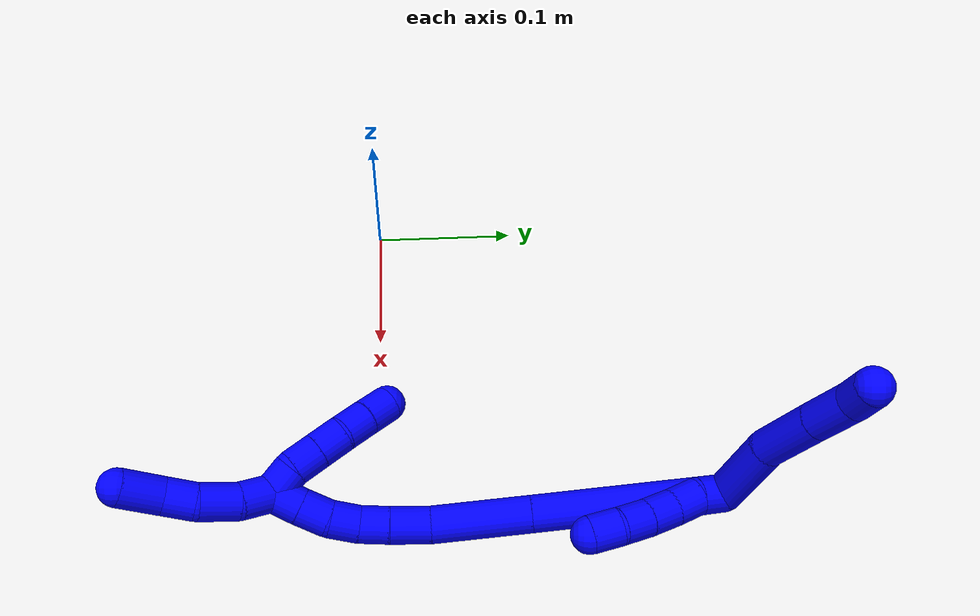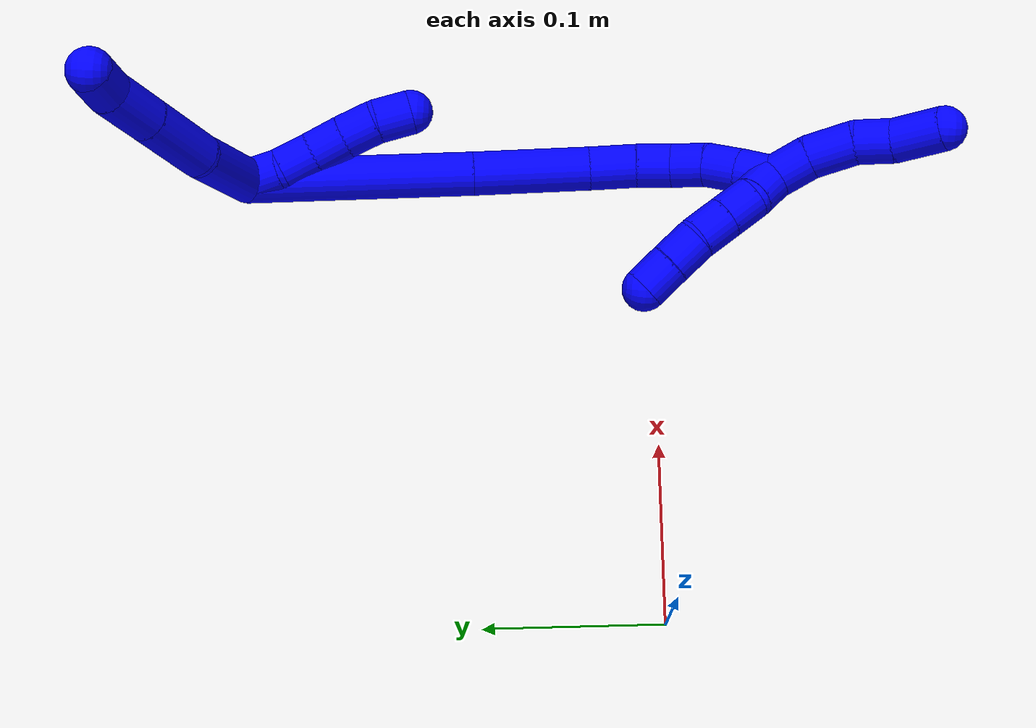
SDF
<sdf version="1.7">
 <world name="default">
  <model name="1">
   <static>0</static>
   <link name="1">
    <collision name="collision-cylinder-e_1_2_8">
     <pose>-0.014896 -0.019457 0.010737 1.06657 -0.590517 -0.355314</pose>
     <geometry><cylinder><radius>0.0125</radius><length>0.053507</length></cylinder></geometry>
     <surface>
      <friction><ode><mu>1.16</mu><mu2>1.16</mu2><slip1>0</slip1><slip2>0</slip2></ode></friction>
      <contact><ode><kp>1e+06</kp><kd>1</kd><max_vel>0</max_vel><min_depth>0.001</min_depth></ode></contact>
     </surface>
    </collision>
    <visual name="visual-cylinder-e_1_2_8">
     <pose>-0.014896 -0.019457 0.010737 1.06657 -0.590517 -0.355314</pose>
     <geometry><cylinder><radius>0.0125</radius><length>0.053507</length></cylinder></geometry>
     <material><ambient>0 0 1 1</ambient></material>
    </visual>
    <collision name="collision-cylinder-e_2_8_9">
     <pose>-0.038077 -0.056233 0.033144 0.977823 -0.377663 -0.202639</pose>
     <geometry><cylinder><radius>0.0125</radius><length>0.044936</length></cylinder></geometry>
     <surface>
      <friction><ode><mu>1.16</mu><mu2>1.16</mu2><slip1>0</slip1><slip2>0</slip2></ode></friction>
      <contact><ode><kp>1e+06</kp><kd>1</kd><max_vel>0</max_vel><min_depth>0.001</min_depth></ode></contact>
     </surface>
    </collision>
    <visual name="visual-cylinder-e_2_8_9">
     <pose>-0.038077 -0.056233 0.033144 0.977823 -0.377663 -0.202639</pose>
     <geometry><cylinder><radius>0.0125</radius><length>0.044936</length></cylinder></geometry>
     <material><ambient>0 0 1 1</ambient></material>
    </visual>
    <collision name="collision-cylinder-e_3_9_10">
     <pose>-0.051925 -0.085475 0.053048 0.966438 -0.366564 -0.193912</pose>
     <geometry><cylinder><radius>0.0125</radius><length>0.031039</length></cylinder></geometry>
     <surface>
      <friction><ode><mu>1.16</mu><mu2>1.16</mu2><slip1>0</slip1><slip2>0</slip2></ode></friction>
      <contact><ode><kp>1e+06</kp><kd>1</kd><max_vel>0</max_vel><min_depth>0.001</min_depth></ode></contact>
     </surface>
    </collision>
    <visual name="visual-cylinder-e_3_9_10">
     <pose>-0.051925 -0.085475 0.053048 0.966438 -0.366564 -0.193912</pose>
     <geometry><cylinder><radius>0.0125</radius><length>0.031039</length></cylinder></geometry>
     <material><ambient>0 0 1 1</ambient></material>
    </visual>
    <collision name="collision-cylinder-e_4_10_6">
     <pose>-0.06117 -0.106305 0.064791 1.19544 -0.367236 -0.251524</pose>
     <geometry><cylinder><radius>0.0125</radius><length>0.020518</length></cylinder></geometry>
     <surface>
      <friction><ode><mu>1.16</mu><mu2>1.16</mu2><slip1>0</slip1><slip2>0</slip2></ode></friction>
      <contact><ode><kp>1e+06</kp><kd>1</kd><max_vel>0</max_vel><min_depth>0.001</min_depth></ode></contact>
     </surface>
    </collision>
    <visual name="visual-cylinder-e_4_10_6">
     <pose>-0.06117 -0.106305 0.064791 1.19544 -0.367236 -0.251524</pose>
     <geometry><cylinder><radius>0.0125</radius><length>0.020518</length></cylinder></geometry>
     <material><ambient>0 0 1 1</ambient></material>
    </visual>
    <collision name="collision-cylinder-e_1_2_11">
     <pose>0.000889 -0.003845 -0.009188 2.74528 0.089056 0.436739</pose>
     <geometry><cylinder><radius>0.0125</radius><length>0.02</length></cylinder></geometry>
     <surface>
      <friction><ode><mu>1.16</mu><mu2>1.16</mu2><slip1>0</slip1><slip2>0</slip2></ode></friction>
      <contact><ode><kp>1e+06</kp><kd>1</kd><max_vel>0</max_vel><min_depth>0.001</min_depth></ode></contact>
     </surface>
    </collision>
    <visual name="visual-cylinder-e_1_2_11">
     <pose>0.000889 -0.003845 -0.009188 2.74528 0.089056 0.436739</pose>
     <geometry><cylinder><radius>0.0125</radius><length>0.02</length></cylinder></geometry>
     <material><ambient>0 0 1 1</ambient></material>
    </visual>
    <collision name="collision-cylinder-e_2_11_12">
     <pose>0.005342 -0.011284 -0.027001 2.74671 0.364276 1.48825</pose>
     <geometry><cylinder><radius>0.0125</radius><length>0.02</length></cylinder></geometry>
     <surface>
      <friction><ode><mu>1.16</mu><mu2>1.16</mu2><slip1>0</slip1><slip2>0</slip2></ode></friction>
      <contact><ode><kp>1e+06</kp><kd>1</kd><max_vel>0</max_vel><min_depth>0.001</min_depth></ode></contact>
     </surface>
    </collision>
    <visual name="visual-cylinder-e_2_11_12">
     <pose>0.005342 -0.011284 -0.027001 2.74671 0.364276 1.48825</pose>
     <geometry><cylinder><radius>0.0125</radius><length>0.02</length></cylinder></geometry>
     <material><ambient>0 0 1 1</ambient></material>
    </visual>
    <collision name="collision-cylinder-e_3_12_13">
     <pose>0.011855 -0.019119 -0.044189 2.68182 0.299541 1.14544</pose>
     <geometry><cylinder><radius>0.0125</radius><length>0.02</length></cylinder></geometry>
     <surface>
      <friction><ode><mu>1.16</mu><mu2>1.16</mu2><slip1>0</slip1><slip2>0</slip2></ode></friction>
      <contact><ode><kp>1e+06</kp><kd>1</kd><max_vel>0</max_vel><min_depth>0.001</min_depth></ode></contact>
     </surface>
    </collision>
    <visual name="visual-cylinder-e_3_12_13">
     <pose>0.011855 -0.019119 -0.044189 2.68182 0.299541 1.14544</pose>
     <geometry><cylinder><radius>0.0125</radius><length>0.02</length></cylinder></geometry>
     <material><ambient>0 0 1 1</ambient></material>
    </visual>
    <collision name="collision-cylinder-e_4_13_14">
     <pose>0.017143 -0.027541 -0.061529 2.69695 0.235885 0.965587</pose>
     <geometry><cylinder><radius>0.0125</radius><length>0.02</length></cylinder></geometry>
     <surface>
      <friction><ode><mu>1.16</mu><mu2>1.16</mu2><slip1>0</slip1><slip2>0</slip2></ode></friction>
      <contact><ode><kp>1e+06</kp><kd>1</kd><max_vel>0</max_vel><min_depth>0.001</min_depth></ode></contact>
     </surface>
    </collision>
    <visual name="visual-cylinder-e_4_13_14">
     <pose>0.017143 -0.027541 -0.061529 2.69695 0.235885 0.965587</pose>
     <geometry><cylinder><radius>0.0125</radius><length>0.02</length></cylinder></geometry>
     <material><ambient>0 0 1 1</ambient></material>
    </visual>
    <collision name="collision-cylinder-e_5_14_5">
     <pose>0.021878 -0.033864 -0.079776 2.91925 0.242182 1.65693</pose>
     <geometry><cylinder><radius>0.0125</radius><length>0.02</length></cylinder></geometry>
     <surface>
      <friction><ode><mu>1.16</mu><mu2>1.16</mu2><slip1>0</slip1><slip2>0</slip2></ode></friction>
      <contact><ode><kp>1e+06</kp><kd>1</kd><max_vel>0</max_vel><min_depth>0.001</min_depth></ode></contact>
     </surface>
    </collision>
    <visual name="visual-cylinder-e_5_14_5">
     <pose>0.021878 -0.033864 -0.079776 2.91925 0.242182 1.65693</pose>
     <geometry><cylinder><radius>0.0125</radius><length>0.02</length></cylinder></geometry>
     <material><ambient>0 0 1 1</ambient></material>
    </visual>
    <collision name="collision-cylinder-e_1_2_15">
     <pose>0.00675 -0.001693 -0.062875 3.11468 0.106909 2.64877</pose>
     <geometry><cylinder><radius>0.0125</radius><length>0.126517</length></cylinder></geometry>
     <surface>
      <friction><ode><mu>1.16</mu><mu2>1.16</mu2><slip1>0</slip1><slip2>0</slip2></ode></friction>
      <contact><ode><kp>1e+06</kp><kd>1</kd><max_vel>0</max_vel><min_depth>0.001</min_depth></ode></contact>
     </surface>
    </collision>
    <visual name="visual-cylinder-e_1_2_15">
     <pose>0.00675 -0.001693 -0.062875 3.11468 0.106909 2.64877</pose>
     <geometry><cylinder><radius>0.0125</radius><length>0.126517</length></cylinder></geometry>
     <material><ambient>0 0 1 1</ambient></material>
    </visual>
    <collision name="collision-cylinder-e_2_15_16">
     <pose>0.016958 -0.004793 -0.158766 3.09898 0.104257 2.36614</pose>
     <geometry><cylinder><radius>0.0125</radius><length>0.066454</length></cylinder></geometry>
     <surface>
      <friction><ode><mu>1.16</mu><mu2>1.16</mu2><slip1>0</slip1><slip2>0</slip2></ode></friction>
      <contact><ode><kp>1e+06</kp><kd>1</kd><max_vel>0</max_vel><min_depth>0.001</min_depth></ode></contact>
     </surface>
    </collision>
    <visual name="visual-cylinder-e_2_15_16">
     <pose>0.016958 -0.004793 -0.158766 3.09898 0.104257 2.36614</pose>
     <geometry><cylinder><radius>0.0125</radius><length>0.066454</length></cylinder></geometry>
     <material><ambient>0 0 1 1</ambient></material>
    </visual>
    <collision name="collision-cylinder-e_3_16_17">
     <pose>0.020404 -0.00808 -0.205086 3.00126 -0.000852 -0.012122</pose>
     <geometry><cylinder><radius>0.0125</radius><length>0.026871</length></cylinder></geometry>
     <surface>
      <friction><ode><mu>1.16</mu><mu2>1.16</mu2><slip1>0</slip1><slip2>0</slip2></ode></friction>
      <contact><ode><kp>1e+06</kp><kd>1</kd><max_vel>0</max_vel><min_depth>0.001</min_depth></ode></contact>
     </surface>
    </collision>
    <visual name="visual-cylinder-e_3_16_17">
     <pose>0.020404 -0.00808 -0.205086 3.00126 -0.000852 -0.012122</pose>
     <geometry><cylinder><radius>0.0125</radius><length>0.026871</length></cylinder></geometry>
     <material><ambient>0 0 1 1</ambient></material>
    </visual>
    <collision name="collision-cylinder-e_4_17_18">
     <pose>0.020004 -0.0109 -0.228363 3.04752 -0.038822 -0.782384</pose>
     <geometry><cylinder><radius>0.0125</radius><length>0.02005</length></cylinder></geometry>
     <surface>
      <friction><ode><mu>1.16</mu><mu2>1.16</mu2><slip1>0</slip1><slip2>0</slip2></ode></friction>
      <contact><ode><kp>1e+06</kp><kd>1</kd><max_vel>0</max_vel><min_depth>0.001</min_depth></ode></contact>
     </surface>
    </collision>
    <visual name="visual-cylinder-e_4_17_18">
     <pose>0.020004 -0.0109 -0.228363 3.04752 -0.038822 -0.782384</pose>
     <geometry><cylinder><radius>0.0125</radius><length>0.02005</length></cylinder></geometry>
     <material><ambient>0 0 1 1</ambient></material>
    </visual>
    <collision name="collision-cylinder-e_5_18_19">
     <pose>0.01763 -0.014388 -0.247835 2.87963 -0.19916 -1.29773</pose>
     <geometry><cylinder><radius>0.0125</radius><length>0.020066</length></cylinder></geometry>
     <surface>
      <friction><ode><mu>1.16</mu><mu2>1.16</mu2><slip1>0</slip1><slip2>0</slip2></ode></friction>
      <contact><ode><kp>1e+06</kp><kd>1</kd><max_vel>0</max_vel><min_depth>0.001</min_depth></ode></contact>
     </surface>
    </collision>
    <visual name="visual-cylinder-e_5_18_19">
     <pose>0.01763 -0.014388 -0.247835 2.87963 -0.19916 -1.29773</pose>
     <geometry><cylinder><radius>0.0125</radius><length>0.020066</length></cylinder></geometry>
     <material><ambient>0 0 1 1</ambient></material>
    </visual>
    <collision name="collision-cylinder-e_6_19_20">
     <pose>0.011654 -0.01847 -0.26638 2.97347 -0.410226 -2.37194</pose>
     <geometry><cylinder><radius>0.0125</radius><length>0.020013</length></cylinder></geometry>
     <surface>
      <friction><ode><mu>1.16</mu><mu2>1.16</mu2><slip1>0</slip1><slip2>0</slip2></ode></friction>
      <contact><ode><kp>1e+06</kp><kd>1</kd><max_vel>0</max_vel><min_depth>0.001</min_depth></ode></contact>
     </surface>
    </collision>
    <visual name="visual-cylinder-e_6_19_20">
     <pose>0.011654 -0.01847 -0.26638 2.97347 -0.410226 -2.37194</pose>
     <geometry><cylinder><radius>0.0125</radius><length>0.020013</length></cylinder></geometry>
     <material><ambient>0 0 1 1</ambient></material>
    </visual>
    <collision name="collision-cylinder-e_7_20_1">
     <pose>0.003238 -0.021426 -0.284298 2.98281 -0.457725 -2.48336</pose>
     <geometry><cylinder><radius>0.0125</radius><length>0.020029</length></cylinder></geometry>
     <surface>
      <friction><ode><mu>1.16</mu><mu2>1.16</mu2><slip1>0</slip1><slip2>0</slip2></ode></friction>
      <contact><ode><kp>1e+06</kp><kd>1</kd><max_vel>0</max_vel><min_depth>0.001</min_depth></ode></contact>
     </surface>
    </collision>
    <visual name="visual-cylinder-e_7_20_1">
     <pose>0.003238 -0.021426 -0.284298 2.98281 -0.457725 -2.48336</pose>
     <geometry><cylinder><radius>0.0125</radius><length>0.020029</length></cylinder></geometry>
     <material><ambient>0 0 1 1</ambient></material>
    </visual>
    <collision name="collision-cylinder-e_1_1_21">
     <pose>-0.008974 -0.021605 -0.287018 -0.199186 -0.892424 0.095533</pose>
     <geometry><cylinder><radius>0.0125</radius><length>0.02</length></cylinder></geometry>
     <surface>
      <friction><ode><mu>1.16</mu><mu2>1.16</mu2><slip1>0</slip1><slip2>0</slip2></ode></friction>
      <contact><ode><kp>1e+06</kp><kd>1</kd><max_vel>0</max_vel><min_depth>0.001</min_depth></ode></contact>
     </surface>
    </collision>
    <visual name="visual-cylinder-e_1_1_21">
     <pose>-0.008974 -0.021605 -0.287018 -0.199186 -0.892424 0.095533</pose>
     <geometry><cylinder><radius>0.0125</radius><length>0.02</length></cylinder></geometry>
     <material><ambient>0 0 1 1</ambient></material>
    </visual>
    <collision name="collision-cylinder-e_2_21_22">
     <pose>-0.022408 -0.017114 -0.273281 -0.404758 -0.600182 0.126815</pose>
     <geometry><cylinder><radius>0.0125</radius><length>0.02</length></cylinder></geometry>
     <surface>
      <friction><ode><mu>1.16</mu><mu2>1.16</mu2><slip1>0</slip1><slip2>0</slip2></ode></friction>
      <contact><ode><kp>1e+06</kp><kd>1</kd><max_vel>0</max_vel><min_depth>0.001</min_depth></ode></contact>
     </surface>
    </collision>
    <visual name="visual-cylinder-e_2_21_22">
     <pose>-0.022408 -0.017114 -0.273281 -0.404758 -0.600182 0.126815</pose>
     <geometry><cylinder><radius>0.0125</radius><length>0.02</length></cylinder></geometry>
     <material><ambient>0 0 1 1</ambient></material>
    </visual>
    <collision name="collision-cylinder-e_3_22_23">
     <pose>-0.033675 -0.01053 -0.258125 -0.414829 -0.59671 0.129255</pose>
     <geometry><cylinder><radius>0.0125</radius><length>0.02</length></cylinder></geometry>
     <surface>
      <friction><ode><mu>1.16</mu><mu2>1.16</mu2><slip1>0</slip1><slip2>0</slip2></ode></friction>
      <contact><ode><kp>1e+06</kp><kd>1</kd><max_vel>0</max_vel><min_depth>0.001</min_depth></ode></contact>
     </surface>
    </collision>
    <visual name="visual-cylinder-e_3_22_23">
     <pose>-0.033675 -0.01053 -0.258125 -0.414829 -0.59671 0.129255</pose>
     <geometry><cylinder><radius>0.0125</radius><length>0.02</length></cylinder></geometry>
     <material><ambient>0 0 1 1</ambient></material>
    </visual>
    <collision name="collision-cylinder-e_4_23_24">
     <pose>-0.0444 -0.002082 -0.243643 -0.637016 -0.535911 0.180571</pose>
     <geometry><cylinder><radius>0.0125</radius><length>0.02</length></cylinder></geometry>
     <surface>
      <friction><ode><mu>1.16</mu><mu2>1.16</mu2><slip1>0</slip1><slip2>0</slip2></ode></friction>
      <contact><ode><kp>1e+06</kp><kd>1</kd><max_vel>0</max_vel><min_depth>0.001</min_depth></ode></contact>
     </surface>
    </collision>
    <visual name="visual-cylinder-e_4_23_24">
     <pose>-0.0444 -0.002082 -0.243643 -0.637016 -0.535911 0.180571</pose>
     <geometry><cylinder><radius>0.0125</radius><length>0.02</length></cylinder></geometry>
     <material><ambient>0 0 1 1</ambient></material>
    </visual>
    <collision name="collision-cylinder-e_5_24_4">
     <pose>-0.054406 0.008486 -0.229931 -0.675988 -0.51203 0.18349</pose>
     <geometry><cylinder><radius>0.0125</radius><length>0.02</length></cylinder></geometry>
     <surface>
      <friction><ode><mu>1.16</mu><mu2>1.16</mu2><slip1>0</slip1><slip2>0</slip2></ode></friction>
      <contact><ode><kp>1e+06</kp><kd>1</kd><max_vel>0</max_vel><min_depth>0.001</min_depth></ode></contact>
     </surface>
    </collision>
    <visual name="visual-cylinder-e_5_24_4">
     <pose>-0.054406 0.008486 -0.229931 -0.675988 -0.51203 0.18349</pose>
     <geometry><cylinder><radius>0.0125</radius><length>0.02</length></cylinder></geometry>
     <material><ambient>0 0 1 1</ambient></material>
    </visual>
    <collision name="collision-cylinder-e_1_1_25">
     <pose>0.001218 -0.028925 -0.302786 2.57793 0.208411 0.693248</pose>
     <geometry><cylinder><radius>0.0125</radius><length>0.023257</length></cylinder></geometry>
     <surface>
      <friction><ode><mu>1.16</mu><mu2>1.16</mu2><slip1>0</slip1><slip2>0</slip2></ode></friction>
      <contact><ode><kp>1e+06</kp><kd>1</kd><max_vel>0</max_vel><min_depth>0.001</min_depth></ode></contact>
     </surface>
    </collision>
    <visual name="visual-cylinder-e_1_1_25">
     <pose>0.001218 -0.028925 -0.302786 2.57793 0.208411 0.693248</pose>
     <geometry><cylinder><radius>0.0125</radius><length>0.023257</length></cylinder></geometry>
     <material><ambient>0 0 1 1</ambient></material>
    </visual>
    <collision name="collision-cylinder-e_2_25_26">
     <pose>0.003411 -0.04104 -0.324388 2.67506 -0.015912 -0.066948</pose>
     <geometry><cylinder><radius>0.0125</radius><length>0.026842</length></cylinder></geometry>
     <surface>
      <friction><ode><mu>1.16</mu><mu2>1.16</mu2><slip1>0</slip1><slip2>0</slip2></ode></friction>
      <contact><ode><kp>1e+06</kp><kd>1</kd><max_vel>0</max_vel><min_depth>0.001</min_depth></ode></contact>
     </surface>
    </collision>
    <visual name="visual-cylinder-e_2_25_26">
     <pose>0.003411 -0.04104 -0.324388 2.67506 -0.015912 -0.066948</pose>
     <geometry><cylinder><radius>0.0125</radius><length>0.026842</length></cylinder></geometry>
     <material><ambient>0 0 1 1</ambient></material>
    </visual>
    <collision name="collision-cylinder-e_3_26_27">
     <pose>0.001161 -0.049766 -0.346358 2.87836 -0.194407 -1.26972</pose>
     <geometry><cylinder><radius>0.0125</radius><length>0.021079</length></cylinder></geometry>
     <surface>
      <friction><ode><mu>1.16</mu><mu2>1.16</mu2><slip1>0</slip1><slip2>0</slip2></ode></friction>
      <contact><ode><kp>1e+06</kp><kd>1</kd><max_vel>0</max_vel><min_depth>0.001</min_depth></ode></contact>
     </surface>
    </collision>
    <visual name="visual-cylinder-e_3_26_27">
     <pose>0.001161 -0.049766 -0.346358 2.87836 -0.194407 -1.26972</pose>
     <geometry><cylinder><radius>0.0125</radius><length>0.021079</length></cylinder></geometry>
     <material><ambient>0 0 1 1</ambient></material>
    </visual>
    <collision name="collision-cylinder-e_4_27_3">
     <pose>-0.003777 -0.059561 -0.36854 2.61423 -0.202765 -0.720739</pose>
     <geometry><cylinder><radius>0.0125</radius><length>0.028822</length></cylinder></geometry>
     <surface>
      <friction><ode><mu>1.16</mu><mu2>1.16</mu2><slip1>0</slip1><slip2>0</slip2></ode></friction>
      <contact><ode><kp>1e+06</kp><kd>1</kd><max_vel>0</max_vel><min_depth>0.001</min_depth></ode></contact>
     </surface>
    </collision>
    <visual name="visual-cylinder-e_4_27_3">
     <pose>-0.003777 -0.059561 -0.36854 2.61423 -0.202765 -0.720739</pose>
     <geometry><cylinder><radius>0.0125</radius><length>0.028822</length></cylinder></geometry>
     <material><ambient>0 0 1 1</ambient></material>
    </visual>
    <collision name="collision-sphere-3">
     <pose>-0.006679 -0.066665 -0.380738 0 -0 0</pose>
     <geometry><sphere><radius>0.0125</radius></sphere></geometry>
     <surface>
      <friction><ode><mu>1.16</mu><mu2>1.16</mu2><slip1>0</slip1><slip2>0</slip2></ode></friction>
      <contact><ode><kp>1e+06</kp><kd>1</kd><max_vel>0</max_vel><min_depth>0.001</min_depth></ode></contact>
     </surface>
    </collision>
    <visual name="visual-sphere-3">
     <pose>-0.006679 -0.066665 -0.380738 0 -0 0</pose>
     <geometry><sphere><radius>0.0125</radius></sphere></geometry>
     <material><ambient>0 0 1 1</ambient></material>
    </visual>
    <collision name="collision-sphere-27">
     <pose>-0.000875 -0.052457 -0.356342 0 -0 0</pose>
     <geometry><sphere><radius>0.0125</radius></sphere></geometry>
     <surface>
      <friction><ode><mu>1.16</mu><mu2>1.16</mu2><slip1>0</slip1><slip2>0</slip2></ode></friction>
      <contact><ode><kp>1e+06</kp><kd>1</kd><max_vel>0</max_vel><min_depth>0.001</min_depth></ode></contact>
     </surface>
    </collision>
    <visual name="visual-sphere-27">
     <pose>-0.000875 -0.052457 -0.356342 0 -0 0</pose>
     <geometry><sphere><radius>0.0125</radius></sphere></geometry>
     <material><ambient>0 0 1 1</ambient></material>
    </visual>
    <collision name="collision-sphere-26">
     <pose>0.003197 -0.047076 -0.336373 0 -0 0</pose>
     <geometry><sphere><radius>0.0125</radius></sphere></geometry>
     <surface>
      <friction><ode><mu>1.16</mu><mu2>1.16</mu2><slip1>0</slip1><slip2>0</slip2></ode></friction>
      <contact><ode><kp>1e+06</kp><kd>1</kd><max_vel>0</max_vel><min_depth>0.001</min_depth></ode></contact>
     </surface>
    </collision>
    <visual name="visual-sphere-26">
     <pose>0.003197 -0.047076 -0.336373 0 -0 0</pose>
     <geometry><sphere><radius>0.0125</radius></sphere></geometry>
     <material><ambient>0 0 1 1</ambient></material>
    </visual>
    <collision name="collision-sphere-25">
     <pose>0.003624 -0.035004 -0.312403 0 -0 0</pose>
     <geometry><sphere><radius>0.0125</radius></sphere></geometry>
     <surface>
      <friction><ode><mu>1.16</mu><mu2>1.16</mu2><slip1>0</slip1><slip2>0</slip2></ode></friction>
      <contact><ode><kp>1e+06</kp><kd>1</kd><max_vel>0</max_vel><min_depth>0.001</min_depth></ode></contact>
     </surface>
    </collision>
    <visual name="visual-sphere-25">
     <pose>0.003624 -0.035004 -0.312403 0 -0 0</pose>
     <geometry><sphere><radius>0.0125</radius></sphere></geometry>
     <material><ambient>0 0 1 1</ambient></material>
    </visual>
    <collision name="collision-sphere-4">
     <pose>-0.059305 0.013941 -0.22313 0 -0 0</pose>
     <geometry><sphere><radius>0.0125</radius></sphere></geometry>
     <surface>
      <friction><ode><mu>1.16</mu><mu2>1.16</mu2><slip1>0</slip1><slip2>0</slip2></ode></friction>
      <contact><ode><kp>1e+06</kp><kd>1</kd><max_vel>0</max_vel><min_depth>0.001</min_depth></ode></contact>
     </surface>
    </collision>
    <visual name="visual-sphere-4">
     <pose>-0.059305 0.013941 -0.22313 0 -0 0</pose>
     <geometry><sphere><radius>0.0125</radius></sphere></geometry>
     <material><ambient>0 0 1 1</ambient></material>
    </visual>
    <collision name="collision-sphere-24">
     <pose>-0.049506 0.003032 -0.236731 0 -0 0</pose>
     <geometry><sphere><radius>0.0125</radius></sphere></geometry>
     <surface>
      <friction><ode><mu>1.16</mu><mu2>1.16</mu2><slip1>0</slip1><slip2>0</slip2></ode></friction>
      <contact><ode><kp>1e+06</kp><kd>1</kd><max_vel>0</max_vel><min_depth>0.001</min_depth></ode></contact>
     </surface>
    </collision>
    <visual name="visual-sphere-24">
     <pose>-0.049506 0.003032 -0.236731 0 -0 0</pose>
     <geometry><sphere><radius>0.0125</radius></sphere></geometry>
     <material><ambient>0 0 1 1</ambient></material>
    </visual>
    <collision name="collision-sphere-23">
     <pose>-0.039294 -0.007196 -0.250555 0 -0 0</pose>
     <geometry><sphere><radius>0.0125</radius></sphere></geometry>
     <surface>
      <friction><ode><mu>1.16</mu><mu2>1.16</mu2><slip1>0</slip1><slip2>0</slip2></ode></friction>
      <contact><ode><kp>1e+06</kp><kd>1</kd><max_vel>0</max_vel><min_depth>0.001</min_depth></ode></contact>
     </surface>
    </collision>
    <visual name="visual-sphere-23">
     <pose>-0.039294 -0.007196 -0.250555 0 -0 0</pose>
     <geometry><sphere><radius>0.0125</radius></sphere></geometry>
     <material><ambient>0 0 1 1</ambient></material>
    </visual>
    <collision name="collision-sphere-22">
     <pose>-0.028056 -0.013864 -0.265695 0 -0 0</pose>
     <geometry><sphere><radius>0.0125</radius></sphere></geometry>
     <surface>
      <friction><ode><mu>1.16</mu><mu2>1.16</mu2><slip1>0</slip1><slip2>0</slip2></ode></friction>
      <contact><ode><kp>1e+06</kp><kd>1</kd><max_vel>0</max_vel><min_depth>0.001</min_depth></ode></contact>
     </surface>
    </collision>
    <visual name="visual-sphere-22">
     <pose>-0.028056 -0.013864 -0.265695 0 -0 0</pose>
     <geometry><sphere><radius>0.0125</radius></sphere></geometry>
     <material><ambient>0 0 1 1</ambient></material>
    </visual>
    <collision name="collision-sphere-21">
     <pose>-0.01676 -0.020363 -0.280866 0 -0 0</pose>
     <geometry><sphere><radius>0.0125</radius></sphere></geometry>
     <surface>
      <friction><ode><mu>1.16</mu><mu2>1.16</mu2><slip1>0</slip1><slip2>0</slip2></ode></friction>
      <contact><ode><kp>1e+06</kp><kd>1</kd><max_vel>0</max_vel><min_depth>0.001</min_depth></ode></contact>
     </surface>
    </collision>
    <visual name="visual-sphere-21">
     <pose>-0.01676 -0.020363 -0.280866 0 -0 0</pose>
     <geometry><sphere><radius>0.0125</radius></sphere></geometry>
     <material><ambient>0 0 1 1</ambient></material>
    </visual>
    <collision name="collision-sphere-1">
     <pose>-0.001188 -0.022847 -0.293169 0 -0 0</pose>
     <geometry><sphere><radius>0.0125</radius></sphere></geometry>
     <surface>
      <friction><ode><mu>1.16</mu><mu2>1.16</mu2><slip1>0</slip1><slip2>0</slip2></ode></friction>
      <contact><ode><kp>1e+06</kp><kd>1</kd><max_vel>0</max_vel><min_depth>0.001</min_depth></ode></contact>
     </surface>
    </collision>
    <visual name="visual-sphere-1">
     <pose>-0.001188 -0.022847 -0.293169 0 -0 0</pose>
     <geometry><sphere><radius>0.0125</radius></sphere></geometry>
     <material><ambient>0 0 1 1</ambient></material>
    </visual>
    <collision name="collision-sphere-11">
     <pose>0.001779 -0.00769 -0.018377 0 -0 0</pose>
     <geometry><sphere><radius>0.0125</radius></sphere></geometry>
     <surface>
      <friction><ode><mu>1.16</mu><mu2>1.16</mu2><slip1>0</slip1><slip2>0</slip2></ode></friction>
      <contact><ode><kp>1e+06</kp><kd>1</kd><max_vel>0</max_vel><min_depth>0.001</min_depth></ode></contact>
     </surface>
    </collision>
    <visual name="visual-sphere-11">
     <pose>0.001779 -0.00769 -0.018377 0 -0 0</pose>
     <geometry><sphere><radius>0.0125</radius></sphere></geometry>
     <material><ambient>0 0 1 1</ambient></material>
    </visual>
    <collision name="collision-sphere-6">
     <pose>-0.064854 -0.115214 0.068301 0 -0 0</pose>
     <geometry><sphere><radius>0.0125</radius></sphere></geometry>
     <surface>
      <friction><ode><mu>1.16</mu><mu2>1.16</mu2><slip1>0</slip1><slip2>0</slip2></ode></friction>
      <contact><ode><kp>1e+06</kp><kd>1</kd><max_vel>0</max_vel><min_depth>0.001</min_depth></ode></contact>
     </surface>
    </collision>
    <visual name="visual-sphere-6">
     <pose>-0.064854 -0.115214 0.068301 0 -0 0</pose>
     <geometry><sphere><radius>0.0125</radius></sphere></geometry>
     <material><ambient>0 0 1 1</ambient></material>
    </visual>
    <collision name="collision-sphere-10">
     <pose>-0.057487 -0.097397 0.061281 0 -0 0</pose>
     <geometry><sphere><radius>0.0125</radius></sphere></geometry>
     <surface>
      <friction><ode><mu>1.16</mu><mu2>1.16</mu2><slip1>0</slip1><slip2>0</slip2></ode></friction>
      <contact><ode><kp>1e+06</kp><kd>1</kd><max_vel>0</max_vel><min_depth>0.001</min_depth></ode></contact>
     </surface>
    </collision>
    <visual name="visual-sphere-10">
     <pose>-0.057487 -0.097397 0.061281 0 -0 0</pose>
     <geometry><sphere><radius>0.0125</radius></sphere></geometry>
     <material><ambient>0 0 1 1</ambient></material>
    </visual>
    <collision name="collision-sphere-9">
     <pose>-0.046362 -0.073553 0.044815 0 -0 0</pose>
     <geometry><sphere><radius>0.0125</radius></sphere></geometry>
     <surface>
      <friction><ode><mu>1.16</mu><mu2>1.16</mu2><slip1>0</slip1><slip2>0</slip2></ode></friction>
      <contact><ode><kp>1e+06</kp><kd>1</kd><max_vel>0</max_vel><min_depth>0.001</min_depth></ode></contact>
     </surface>
    </collision>
    <visual name="visual-sphere-9">
     <pose>-0.046362 -0.073553 0.044815 0 -0 0</pose>
     <geometry><sphere><radius>0.0125</radius></sphere></geometry>
     <material><ambient>0 0 1 1</ambient></material>
    </visual>
    <collision name="collision-sphere-2">
     <geometry><sphere><radius>0.0125</radius></sphere></geometry>
     <surface>
      <friction><ode><mu>1.16</mu><mu2>1.16</mu2><slip1>0</slip1><slip2>0</slip2></ode></friction>
      <contact><ode><kp>1e+06</kp><kd>1</kd><max_vel>0</max_vel><min_depth>0.001</min_depth></ode></contact>
     </surface>
    </collision>
    <visual name="visual-sphere-2">
     <geometry><sphere><radius>0.0125</radius></sphere></geometry>
     <material><ambient>0 0 1 1</ambient></material>
    </visual>
    <collision name="collision-sphere-19">
     <pose>0.015645 -0.016935 -0.257333 0 -0 0</pose>
     <geometry><sphere><radius>0.0125</radius></sphere></geometry>
     <surface>
      <friction><ode><mu>1.16</mu><mu2>1.16</mu2><slip1>0</slip1><slip2>0</slip2></ode></friction>
      <contact><ode><kp>1e+06</kp><kd>1</kd><max_vel>0</max_vel><min_depth>0.001</min_depth></ode></contact>
     </surface>
    </collision>
    <visual name="visual-sphere-19">
     <pose>0.015645 -0.016935 -0.257333 0 -0 0</pose>
     <geometry><sphere><radius>0.0125</radius></sphere></geometry>
     <material><ambient>0 0 1 1</ambient></material>
    </visual>
    <collision name="collision-sphere-8">
     <pose>-0.029792 -0.038914 0.021473 0 -0 0</pose>
     <geometry><sphere><radius>0.0125</radius></sphere></geometry>
     <surface>
      <friction><ode><mu>1.16</mu><mu2>1.16</mu2><slip1>0</slip1><slip2>0</slip2></ode></friction>
      <contact><ode><kp>1e+06</kp><kd>1</kd><max_vel>0</max_vel><min_depth>0.001</min_depth></ode></contact>
     </surface>
    </collision>
    <visual name="visual-sphere-8">
     <pose>-0.029792 -0.038914 0.021473 0 -0 0</pose>
     <geometry><sphere><radius>0.0125</radius></sphere></geometry>
     <material><ambient>0 0 1 1</ambient></material>
    </visual>
    <collision name="collision-sphere-12">
     <pose>0.008904 -0.014879 -0.035626 0 -0 0</pose>
     <geometry><sphere><radius>0.0125</radius></sphere></geometry>
     <surface>
      <friction><ode><mu>1.16</mu><mu2>1.16</mu2><slip1>0</slip1><slip2>0</slip2></ode></friction>
      <contact><ode><kp>1e+06</kp><kd>1</kd><max_vel>0</max_vel><min_depth>0.001</min_depth></ode></contact>
     </surface>
    </collision>
    <visual name="visual-sphere-12">
     <pose>0.008904 -0.014879 -0.035626 0 -0 0</pose>
     <geometry><sphere><radius>0.0125</radius></sphere></geometry>
     <material><ambient>0 0 1 1</ambient></material>
    </visual>
    <collision name="collision-sphere-13">
     <pose>0.014806 -0.023359 -0.052751 0 -0 0</pose>
     <geometry><sphere><radius>0.0125</radius></sphere></geometry>
     <surface>
      <friction><ode><mu>1.16</mu><mu2>1.16</mu2><slip1>0</slip1><slip2>0</slip2></ode></friction>
      <contact><ode><kp>1e+06</kp><kd>1</kd><max_vel>0</max_vel><min_depth>0.001</min_depth></ode></contact>
     </surface>
    </collision>
    <visual name="visual-sphere-13">
     <pose>0.014806 -0.023359 -0.052751 0 -0 0</pose>
     <geometry><sphere><radius>0.0125</radius></sphere></geometry>
     <material><ambient>0 0 1 1</ambient></material>
    </visual>
    <collision name="collision-sphere-14">
     <pose>0.01948 -0.031723 -0.070306 0 -0 0</pose>
     <geometry><sphere><radius>0.0125</radius></sphere></geometry>
     <surface>
      <friction><ode><mu>1.16</mu><mu2>1.16</mu2><slip1>0</slip1><slip2>0</slip2></ode></friction>
      <contact><ode><kp>1e+06</kp><kd>1</kd><max_vel>0</max_vel><min_depth>0.001</min_depth></ode></contact>
     </surface>
    </collision>
    <visual name="visual-sphere-14">
     <pose>0.01948 -0.031723 -0.070306 0 -0 0</pose>
     <geometry><sphere><radius>0.0125</radius></sphere></geometry>
     <material><ambient>0 0 1 1</ambient></material>
    </visual>
    <collision name="collision-sphere-5">
     <pose>0.024276 -0.036005 -0.089245 0 -0 0</pose>
     <geometry><sphere><radius>0.0125</radius></sphere></geometry>
     <surface>
      <friction><ode><mu>1.16</mu><mu2>1.16</mu2><slip1>0</slip1><slip2>0</slip2></ode></friction>
      <contact><ode><kp>1e+06</kp><kd>1</kd><max_vel>0</max_vel><min_depth>0.001</min_depth></ode></contact>
     </surface>
    </collision>
    <visual name="visual-sphere-5">
     <pose>0.024276 -0.036005 -0.089245 0 -0 0</pose>
     <geometry><sphere><radius>0.0125</radius></sphere></geometry>
     <material><ambient>0 0 1 1</ambient></material>
    </visual>
    <collision name="collision-sphere-15">
     <pose>0.0135 -0.003385 -0.125749 0 -0 0</pose>
     <geometry><sphere><radius>0.0125</radius></sphere></geometry>
     <surface>
      <friction><ode><mu>1.16</mu><mu2>1.16</mu2><slip1>0</slip1><slip2>0</slip2></ode></friction>
      <contact><ode><kp>1e+06</kp><kd>1</kd><max_vel>0</max_vel><min_depth>0.001</min_depth></ode></contact>
     </surface>
    </collision>
    <visual name="visual-sphere-15">
     <pose>0.0135 -0.003385 -0.125749 0 -0 0</pose>
     <geometry><sphere><radius>0.0125</radius></sphere></geometry>
     <material><ambient>0 0 1 1</ambient></material>
    </visual>
    <collision name="collision-sphere-16">
     <pose>0.020416 -0.006201 -0.191783 0 -0 0</pose>
     <geometry><sphere><radius>0.0125</radius></sphere></geometry>
     <surface>
      <friction><ode><mu>1.16</mu><mu2>1.16</mu2><slip1>0</slip1><slip2>0</slip2></ode></friction>
      <contact><ode><kp>1e+06</kp><kd>1</kd><max_vel>0</max_vel><min_depth>0.001</min_depth></ode></contact>
     </surface>
    </collision>
    <visual name="visual-sphere-16">
     <pose>0.020416 -0.006201 -0.191783 0 -0 0</pose>
     <geometry><sphere><radius>0.0125</radius></sphere></geometry>
     <material><ambient>0 0 1 1</ambient></material>
    </visual>
    <collision name="collision-sphere-17">
     <pose>0.020393 -0.009959 -0.218389 0 -0 0</pose>
     <geometry><sphere><radius>0.0125</radius></sphere></geometry>
     <surface>
      <friction><ode><mu>1.16</mu><mu2>1.16</mu2><slip1>0</slip1><slip2>0</slip2></ode></friction>
      <contact><ode><kp>1e+06</kp><kd>1</kd><max_vel>0</max_vel><min_depth>0.001</min_depth></ode></contact>
     </surface>
    </collision>
    <visual name="visual-sphere-17">
     <pose>0.020393 -0.009959 -0.218389 0 -0 0</pose>
     <geometry><sphere><radius>0.0125</radius></sphere></geometry>
     <material><ambient>0 0 1 1</ambient></material>
    </visual>
    <collision name="collision-sphere-18">
     <pose>0.019615 -0.011841 -0.238336 0 -0 0</pose>
     <geometry><sphere><radius>0.0125</radius></sphere></geometry>
     <surface>
      <friction><ode><mu>1.16</mu><mu2>1.16</mu2><slip1>0</slip1><slip2>0</slip2></ode></friction>
      <contact><ode><kp>1e+06</kp><kd>1</kd><max_vel>0</max_vel><min_depth>0.001</min_depth></ode></contact>
     </surface>
    </collision>
    <visual name="visual-sphere-18">
     <pose>0.019615 -0.011841 -0.238336 0 -0 0</pose>
     <geometry><sphere><radius>0.0125</radius></sphere></geometry>
     <material><ambient>0 0 1 1</ambient></material>
    </visual>
    <collision name="collision-sphere-20">
     <pose>0.007663 -0.020006 -0.275427 0 -0 0</pose>
     <geometry><sphere><radius>0.0125</radius></sphere></geometry>
     <surface>
      <friction><ode><mu>1.16</mu><mu2>1.16</mu2><slip1>0</slip1><slip2>0</slip2></ode></friction>
      <contact><ode><kp>1e+06</kp><kd>1</kd><max_vel>0</max_vel><min_depth>0.001</min_depth></ode></contact>
     </surface>
    </collision>
    <visual name="visual-sphere-20">
     <pose>0.007663 -0.020006 -0.275427 0 -0 0</pose>
     <geometry><sphere><radius>0.0125</radius></sphere></geometry>
     <material><ambient>0 0 1 1</ambient></material>
    </visual>
    <inertial>
     <pose>-0.00519 -0.023691 -0.137999 0 -0 0</pose>
     <mass>0.75</mass>
     <inertia><ixx>-4.4e-05</ixx><ixy>0</ixy><ixz>0</ixz><iyy>0.000267</iyy><iyz>0</iyz><izz>4e-06</izz></inertia>
    </inertial>
   </link>
   <pose>0.251952 0.225952 0.024635 -1.5254 0.57059 -0.042585</pose>
  </model>
 </world>
</sdf>
